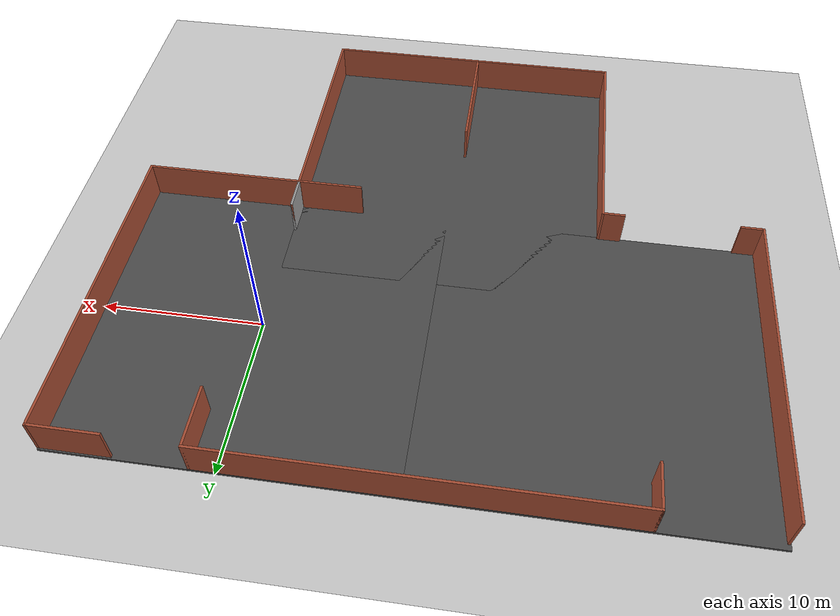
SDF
<sdf version="1.7">
 <world name="default">
  <light name="sun" type="directional">
   <pose>0 0 10 0 -0 0</pose>
   <diffuse>0.8 0.8 0.8 1</diffuse>
   <specular>0.2 0.2 0.2 1</specular>
   <attenuation>
    <range>1000</range>
    <constant>0.9</constant>
    <linear>0.01</linear>
    <quadratic>0.001</quadratic>
   </attenuation>
   <direction>-0.5 0.1 -0.9</direction>
   <spot><inner_angle>0</inner_angle><outer_angle>0</outer_angle><falloff>0</falloff></spot>
  </light>
  <model name="ground_plane">
   <static>1</static>
   <link name="link">
    <collision name="collision">
     <geometry><plane><normal>0 0 1</normal><size>100 100</size></plane></geometry>
     <surface><friction><ode><mu>100</mu><mu2>50</mu2></ode></friction></surface>
    </collision>
    <visual name="visual">
     <cast_shadows>0</cast_shadows>
     <geometry><plane><normal>0 0 1</normal><size>100 100</size></plane></geometry>
     <material>
      <script><uri>file://media/materials/scripts/gazebo.material</uri><name>Gazebo/Grey</name></script>
     </material>
    </visual>
   </link>
  </model>
  <gravity>0 0 -9.8</gravity>
  <magnetic_field>6e-06 2.3e-05 -4.2e-05</magnetic_field>
  <atmosphere type="adiabatic"/>
  <physics type="ode">
   <max_step_size>0.001</max_step_size>
   <real_time_factor>1</real_time_factor>
   <real_time_update_rate>1000</real_time_update_rate>
  </physics>
  <scene><ambient>0.4 0.4 0.4 1</ambient><background>0.7 0.7 0.7 1</background><shadows>1</shadows></scene>
  <audio><device>default</device></audio>
  <spherical_coordinates>
   <surface_model>EARTH_WGS84</surface_model>
   <latitude_deg>0</latitude_deg>
   <longitude_deg>0</longitude_deg>
   <elevation>0</elevation>
   <heading_deg>0</heading_deg>
  </spherical_coordinates>
  <model name="concrete_floor">
   <static>1</static>
   <link name="link">
    <collision name="collision"><geometry><box><size>20 20 0.2</size></box></geometry></collision>
    <visual name="visual">
     <geometry><box><size>20 20 0.2</size></box></geometry>
     <material>
      <script>
       <uri>model://concrete_floor/materials/scripts</uri>
       <uri>model://concrete_floor/materials/textures</uri>
       <name>Concrete/Flat</name>
      </script>
      <ambient>0.2 0.2 0.2 1</ambient>
      <diffuse>0.3 0.3 0.3 1</diffuse>
     </material>
    </visual>
   </link>
   <pose>-0.012686 -0.02864 0 0 -0 0</pose>
  </model>
  <model name="concrete_floor_0">
   <static>1</static>
   <link name="link">
    <collision name="collision"><geometry><box><size>20 20 0.2</size></box></geometry></collision>
    <visual name="visual">
     <geometry><box><size>20 20 0.2</size></box></geometry>
     <material>
      <script>
       <uri>model://concrete_floor/materials/scripts</uri>
       <uri>model://concrete_floor/materials/textures</uri>
       <name>Concrete/Flat</name>
      </script>
      <ambient>0.2 0.2 0.2 1</ambient>
      <diffuse>0.3 0.3 0.3 1</diffuse>
     </material>
    </visual>
   </link>
   <pose>-20.0107 -0.019998 0 0 -0 0</pose>
  </model>
  <model name="concrete_floor_1">
   <static>1</static>
   <link name="link">
    <collision name="collision"><geometry><box><size>20 20 0.2</size></box></geometry></collision>
    <visual name="visual">
     <geometry><box><size>20 20 0.2</size></box></geometry>
     <material>
      <script>
       <uri>model://concrete_floor/materials/scripts</uri>
       <uri>model://concrete_floor/materials/textures</uri>
       <name>Concrete/Flat</name>
      </script>
      <ambient>0.2 0.2 0.2 1</ambient>
      <diffuse>0.3 0.3 0.3 1</diffuse>
     </material>
    </visual>
   </link>
   <pose>-10.03 -14.5574 0 0 -0 0</pose>
  </model>
  <model name="warehouse_world.world">
   <pose>-10.0248 -7.33196 0 0 -0 0</pose>
   <link name="Wall_1">
    <collision name="Wall_1_Collision">
     <geometry><box><size>24.75 0.15 2.5</size></box></geometry>
     <pose>0 0 1.25 0 -0 0</pose>
    </collision>
    <visual name="Wall_1_Visual">
     <pose>0 0 1.25 0 -0 0</pose>
     <geometry><box><size>24.75 0.15 2.5</size></box></geometry>
     <material>
      <script><uri>file://media/materials/scripts/gazebo.material</uri><name>Gazebo/Bricks</name></script>
      <ambient>1 1 1 1</ambient>
     </material>
     <meta><layer>0</layer></meta>
    </visual>
    <pose>-0.837248 17.212 0 0 -0 0</pose>
   </link>
   <link name="Wall_10">
    <collision name="Wall_10_Collision">
     <geometry><box><size>2.25 0.15 2.5</size></box></geometry>
     <pose>0 0 1.25 0 -0 0</pose>
    </collision>
    <visual name="Wall_10_Visual">
     <pose>0 0 1.25 0 -0 0</pose>
     <geometry><box><size>2.25 0.15 2.5</size></box></geometry>
     <material>
      <script><uri>file://media/materials/scripts/gazebo.material</uri><name>Gazebo/Grey</name></script>
      <ambient>1 1 1 1</ambient>
     </material>
     <meta><layer>0</layer></meta>
    </visual>
    <pose>9.88604 -1.66196 0 0 -0 1.5708</pose>
   </link>
   <link name="Wall_11">
    <collision name="Wall_11_Collision">
     <geometry><box><size>16.75 0.15 2.5</size></box></geometry>
     <pose>0 0 1.25 0 -0 0</pose>
    </collision>
    <visual name="Wall_11_Visual">
     <pose>0 0 1.25 0 -0 0</pose>
     <geometry><box><size>16.75 0.15 2.5</size></box></geometry>
     <material>
      <script><uri>file://media/materials/scripts/gazebo.material</uri><name>Gazebo/Bricks</name></script>
      <ambient>1 1 1 1</ambient>
     </material>
     <meta><layer>0</layer></meta>
    </visual>
    <pose>9.88604 -8.91196 0 0 -0 -1.5708</pose>
   </link>
   <link name="Wall_12">
    <collision name="Wall_12_Collision">
     <geometry><box><size>20 0.15 2.5</size></box></geometry>
     <pose>0 0 1.25 0 -0 0</pose>
    </collision>
    <visual name="Wall_12_Visual">
     <pose>0 0 1.25 0 -0 0</pose>
     <geometry><box><size>20 0.15 2.5</size></box></geometry>
     <material>
      <script><uri>file://media/materials/scripts/gazebo.material</uri><name>Gazebo/Bricks</name></script>
      <ambient>1 1 1 1</ambient>
     </material>
     <meta><layer>0</layer></meta>
    </visual>
    <pose>-0.038955 -17.212 0 0 -0 3.14159</pose>
   </link>
   <link name="Wall_13">
    <collision name="Wall_13_Collision">
     <geometry><box><size>14.75 0.15 2.5</size></box></geometry>
     <pose>0 0 1.25 0 -0 0</pose>
    </collision>
    <visual name="Wall_13_Visual">
     <pose>0 0 1.25 0 -0 0</pose>
     <geometry><box><size>14.75 0.15 2.5</size></box></geometry>
     <material>
      <script><uri>file://media/materials/scripts/gazebo.material</uri><name>Gazebo/Bricks</name></script>
      <ambient>1 1 1 1</ambient>
     </material>
     <meta><layer>0</layer></meta>
    </visual>
    <pose>-9.96395 -9.91196 0 0 -0 1.5708</pose>
   </link>
   <link name="Wall_14">
    <collision name="Wall_14_Collision">
     <geometry><box><size>1.5 0.15 2.5</size></box></geometry>
     <pose>0 0 1.25 0 -0 0</pose>
    </collision>
    <visual name="Wall_14_Visual">
     <pose>0 0 1.25 0 -0 0</pose>
     <geometry><box><size>1.5 0.15 2.5</size></box></geometry>
     <material>
      <script><uri>file://media/materials/scripts/gazebo.material</uri><name>Gazebo/Bricks</name></script>
      <ambient>1 1 1 1</ambient>
     </material>
     <meta><layer>0</layer></meta>
    </visual>
    <pose>-10.639 -2.61196 0 0 -0 3.14159</pose>
   </link>
   <link name="Wall_20">
    <collision name="Wall_20_Collision">
     <geometry><box><size>19.6901 0.15 2.5</size></box></geometry>
     <pose>0 0 1.25 0 -0 0</pose>
    </collision>
    <visual name="Wall_20_Visual">
     <pose>0 0 1.25 0 -0 0</pose>
     <geometry><box><size>19.6901 0.15 2.5</size></box></geometry>
     <material>
      <script><uri>file://media/materials/scripts/gazebo.material</uri><name>Gazebo/Bricks</name></script>
      <ambient>1 1 1 1</ambient>
     </material>
     <meta><layer>0</layer></meta>
    </visual>
    <pose>-19.9198 7.14308 0 0 -0 -1.57753</pose>
   </link>
   <link name="Wall_21">
    <collision name="Wall_21_Collision">
     <geometry><box><size>1.5 0.15 2.5</size></box></geometry>
     <pose>0 0 1.25 0 -0 0</pose>
    </collision>
    <visual name="Wall_21_Visual">
     <pose>0 0 1.25 0 -0 0</pose>
     <geometry><box><size>1.5 0.15 2.5</size></box></geometry>
     <material>
      <script><uri>file://media/materials/scripts/gazebo.material</uri><name>Gazebo/Bricks</name></script>
      <ambient>1 1 1 1</ambient>
     </material>
     <meta><layer>0</layer></meta>
    </visual>
    <pose>-19.3105 -2.62675 0 0 -0 0</pose>
   </link>
   <link name="Wall_26">
    <collision name="Wall_26_Collision">
     <geometry><box><size>8 0.15 2.5</size></box></geometry>
     <pose>0 0 1.25 0 -0 0</pose>
    </collision>
    <visual name="Wall_26_Visual">
     <pose>0 0 1.25 0 -0 0</pose>
     <geometry><box><size>8 0.15 2.5</size></box></geometry>
     <material>
      <script><uri>file://media/materials/scripts/gazebo.material</uri><name>Gazebo/Bricks</name></script>
      <ambient>1 1 1 1</ambient>
     </material>
     <meta><layer>0</layer></meta>
    </visual>
    <pose>-0.460401 -13.1301 0 0 -0 1.5708</pose>
   </link>
   <link name="Wall_28">
    <collision name="Wall_28_Collision">
     <geometry><box><size>4.25 0.15 2.5</size></box></geometry>
     <pose>0 0 1.25 0 -0 0</pose>
    </collision>
    <visual name="Wall_28_Visual">
     <pose>0 0 1.25 0 -0 0</pose>
     <geometry><box><size>4.25 0.15 2.5</size></box></geometry>
     <material>
      <script><uri>file://media/materials/scripts/gazebo.material</uri><name>Gazebo/Bricks</name></script>
      <ambient>1 1 1 1</ambient>
     </material>
     <meta><layer>0</layer></meta>
    </visual>
    <pose>7.83605 -2.71196 0 0 -0 3.14159</pose>
   </link>
   <link name="Wall_3">
    <collision name="Wall_3_Collision">
     <geometry><box><size>3.75 0.15 2.5</size></box></geometry>
     <pose>0 0 1.25 0 -0 0</pose>
    </collision>
    <visual name="Wall_3_Visual">
     <pose>0 0 1.25 0 -0 0</pose>
     <geometry><box><size>3.75 0.15 2.5</size></box></geometry>
     <material>
      <script><uri>file://media/materials/scripts/gazebo.material</uri><name>Gazebo/Bricks</name></script>
      <ambient>1 1 1 1</ambient>
     </material>
     <meta><layer>0</layer></meta>
    </visual>
    <pose>11.4628 15.412 0 0 -0 -1.5708</pose>
   </link>
   <link name="Wall_5">
    <collision name="Wall_5_Collision">
     <geometry><box><size>2.75 0.15 2.5</size></box></geometry>
     <pose>0 0 1.25 0 -0 0</pose>
    </collision>
    <visual name="Wall_5_Visual">
     <pose>0 0 1.25 0 -0 0</pose>
     <geometry><box><size>2.75 0.15 2.5</size></box></geometry>
     <material>
      <script><uri>file://media/materials/scripts/gazebo.material</uri><name>Gazebo/Bricks</name></script>
      <ambient>1 1 1 1</ambient>
     </material>
     <meta><layer>0</layer></meta>
    </visual>
    <pose>-13.1372 15.912 0 0 -0 -1.5708</pose>
   </link>
   <link name="Wall_7">
    <collision name="Wall_7_Collision">
     <geometry><box><size>4.25 0.15 2.5</size></box></geometry>
     <pose>0 0 1.25 0 -0 0</pose>
    </collision>
    <visual name="Wall_7_Visual">
     <pose>0 0 1.25 0 -0 0</pose>
     <geometry><box><size>4.25 0.15 2.5</size></box></geometry>
     <material>
      <script><uri>file://media/materials/scripts/gazebo.material</uri><name>Gazebo/Bricks</name></script>
      <ambient>1 1 1 1</ambient>
     </material>
     <meta><layer>0</layer></meta>
    </visual>
    <pose>17.936 17.138 0 0 -0 0</pose>
   </link>
   <link name="Wall_8">
    <collision name="Wall_8_Collision">
     <geometry><box><size>20 0.15 2.5</size></box></geometry>
     <pose>0 0 1.25 0 -0 0</pose>
    </collision>
    <visual name="Wall_8_Visual">
     <pose>0 0 1.25 0 -0 0</pose>
     <geometry><box><size>20 0.15 2.5</size></box></geometry>
     <material>
      <script><uri>file://media/materials/scripts/gazebo.material</uri><name>Gazebo/Bricks</name></script>
      <ambient>1 1 1 1</ambient>
     </material>
     <meta><layer>0</layer></meta>
    </visual>
    <pose>19.986 7.21304 0 0 -0 -1.5708</pose>
   </link>
   <link name="Wall_9">
    <collision name="Wall_9_Collision">
     <geometry><box><size>10.25 0.15 2.5</size></box></geometry>
     <pose>0 0 1.25 0 -0 0</pose>
    </collision>
    <visual name="Wall_9_Visual">
     <pose>0 0 1.25 0 -0 0</pose>
     <geometry><box><size>10.25 0.15 2.5</size></box></geometry>
     <material>
      <script><uri>file://media/materials/scripts/gazebo.material</uri><name>Gazebo/Bricks</name></script>
      <ambient>1 1 1 1</ambient>
     </material>
     <meta><layer>0</layer></meta>
    </visual>
    <pose>14.936 -2.71196 0 0 -0 3.14159</pose>
   </link>
   <static>1</static>
  </model>
 </world>
</sdf>
